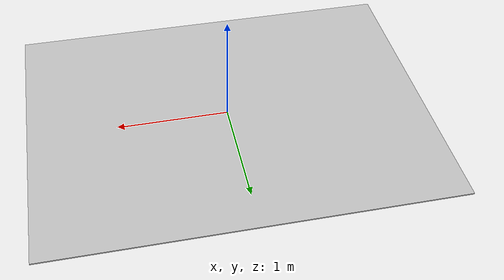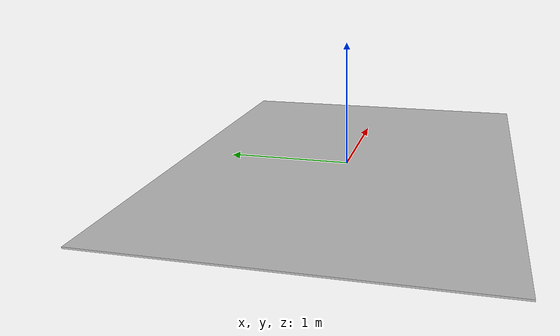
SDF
<?xml version="1.0"?>
<!--
	 SPDX-License-Identifier: GPL-3.0-only

	 Copyright (C) 2021  Haruki Shimotori. All right reserved.
-->

<sdf version="1.5">
	<model name="course_small">
		<static>true</static>
		<link name="course_small">
			<pose>0 0 0.006 0 0 0</pose>

			<collision name="collisio">
				<geometry>
					<box>
						<size>3.6 2.7202 0.012</size>
					</box>
				</geometry>
			</collision>
			<visual name="visual">
				<geometry>
					<box>
						<size>3.6 2.7202 0.012</size>
					</box>
				</geometry>
				<material>
					<script>
						<uri>model://robotracer_sdf/course_small/materials/course.material</uri>
						<name>course_texture</name>
					</script>
				</material>
			</visual>
		</link>
  </model>
</sdf>
